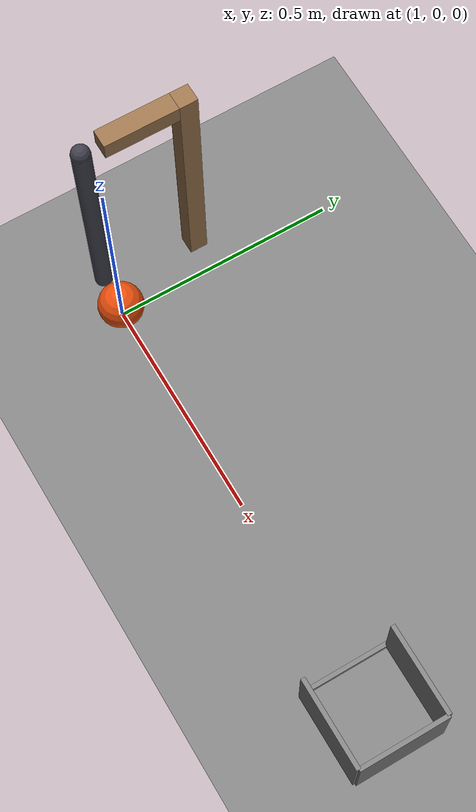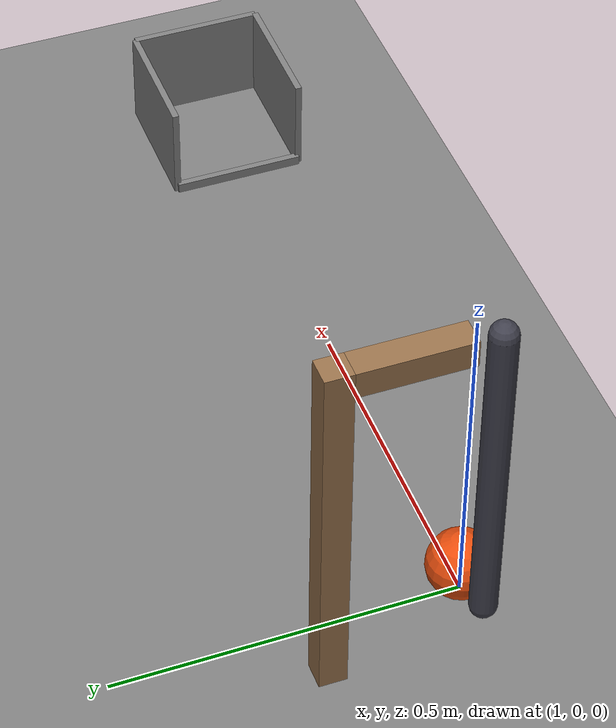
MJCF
<mujoco model="pendulum_knocks_a_ball_into_a_cup">
  <compiler angle="radian"/>
  <option timestep="0.002"/>
  <worldbody>
    <geom name="floor" type="plane" size="6 6 0.1" friction="0.8 0.005 0.001"/>
    <body name="ball" pos="1 0 0.05">
      <freejoint/>
      <geom name="ball" type="sphere" pos="0 0 0" size="0.05" mass="0.1" condim="6" friction="0.05 0.005 0.001" rgba="0.9 0.3 0.05 1"/>
    </body>
    <body name="pivot">
    </body>
    <body name="pendulum foot">
    </body>
    <body name="pendulum" pos="0.925 0 0.55">
      <joint name="swing" type="hinge" pos="0 0 0" axis="0 1 0"/>
      <geom name="pendulum" type="capsule" size="0.02" fromto="0 0 0 0 0 -0.5" mass="1.2" friction="0.05 0.001 0.0001" rgba="0.25 0.25 0.3 1"/>
    </body>
    <body name="stand beam">
      <geom name="stand beam" type="box" pos="0.925 0.12 0.55" size="0.02 0.08 0.02" rgba="0.6 0.45 0.3 1"/>
    </body>
    <body name="stand post">
      <geom name="stand post" type="box" pos="0.925 0.22 0.285" size="0.02 0.02 0.285" rgba="0.6 0.45 0.3 1"/>
    </body>
    <body name="cup">
      <geom name="cup_base" type="box" pos="2 0 0.001" size="0.1 0.1 0.001"/>
      <geom name="cup_near_wall" type="box" pos="1.9 0 0.0075" size="0.005 0.1 0.0075"/>
      <geom name="cup_far_wall" type="box" pos="2.1 0 0.075" size="0.005 0.1 0.075" solref="0.01 1"/>
      <geom name="cup_left_wall" type="box" pos="2 0.1 0.075" size="0.1 0.005 0.075" solref="0.01 1"/>
      <geom name="cup_right_wall" type="box" pos="2 -0.1 0.075" size="0.1 0.005 0.075" solref="0.01 1"/>
    </body>
  </worldbody>
  <keyframe>
    <key name="start" qpos="1 0 0.05 1 0 0 0 0.698132" qvel="0 0 0 0 0 0 0"/>
  </keyframe>
</mujoco>
